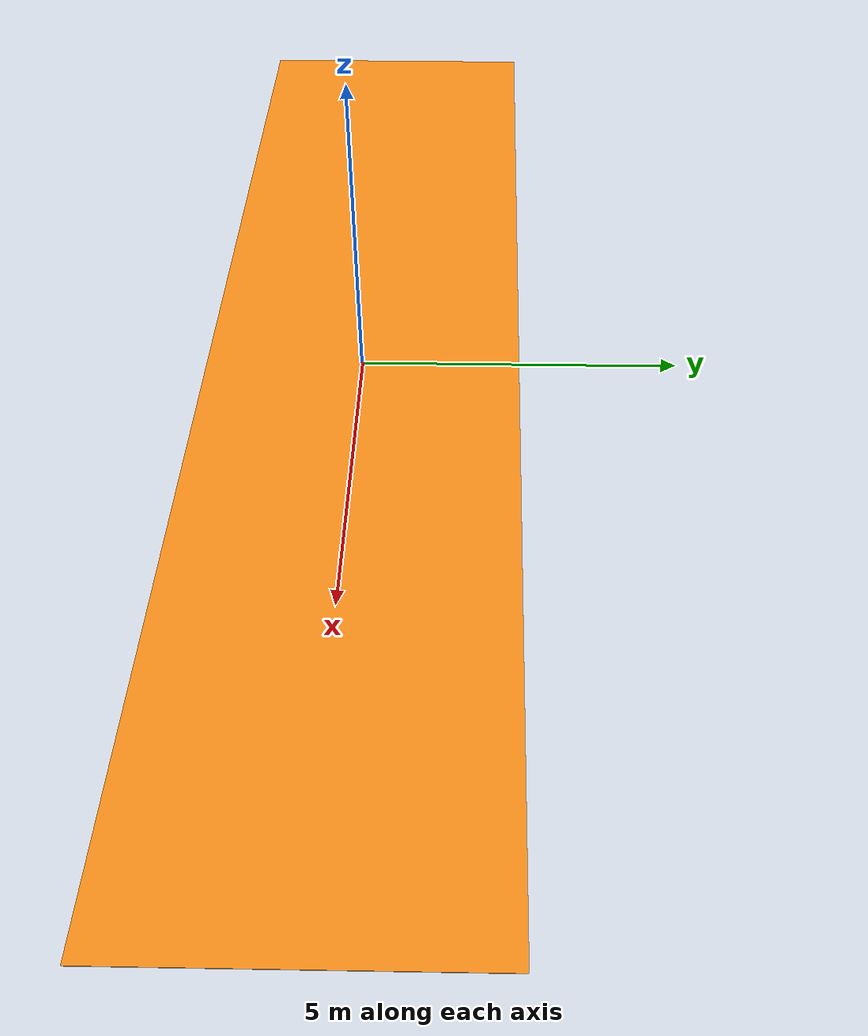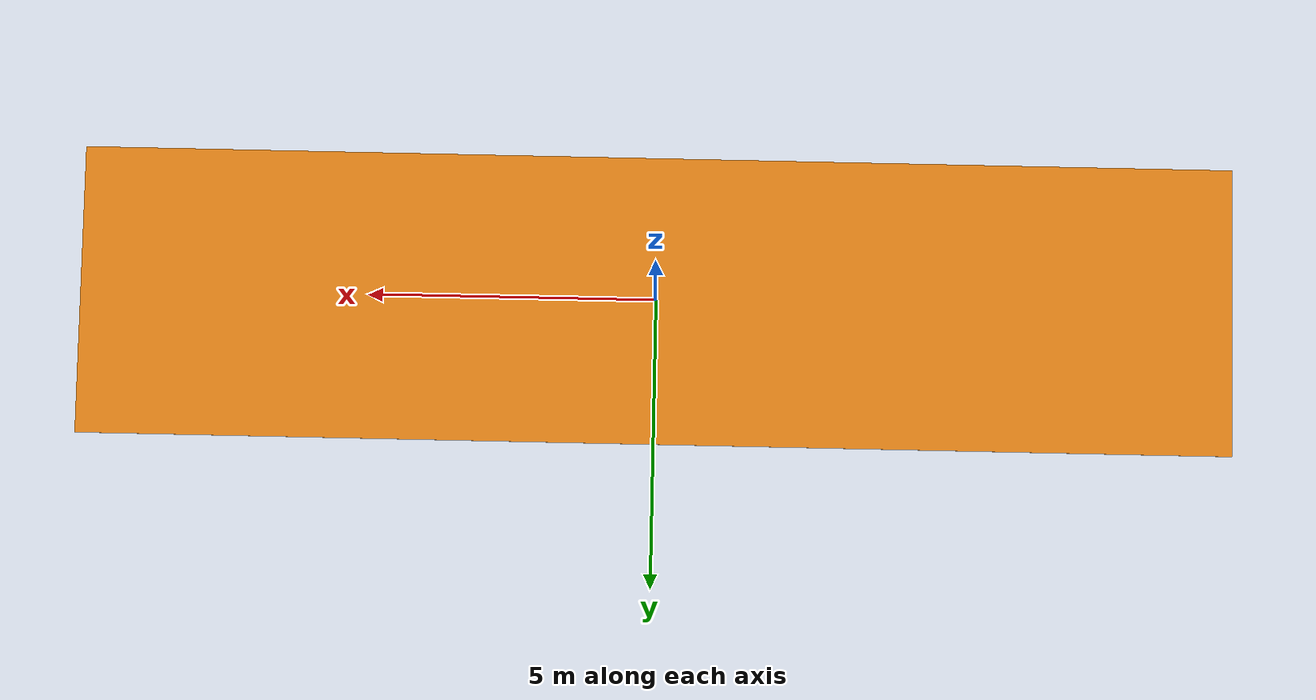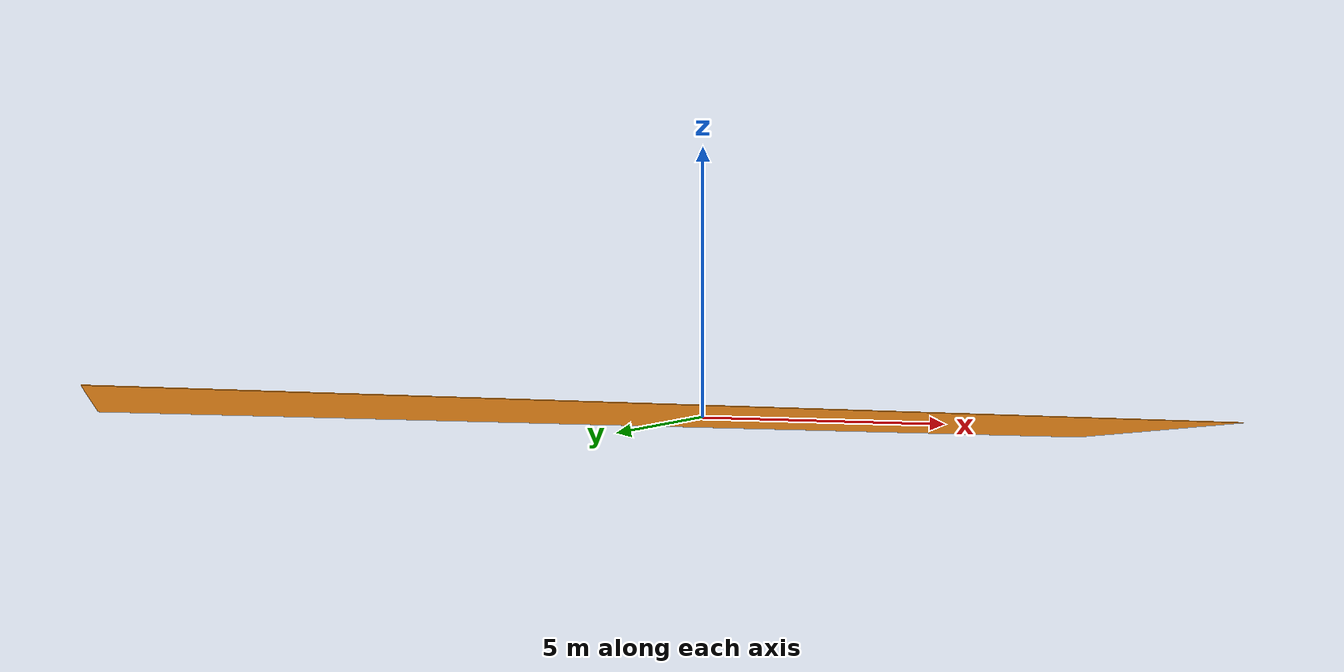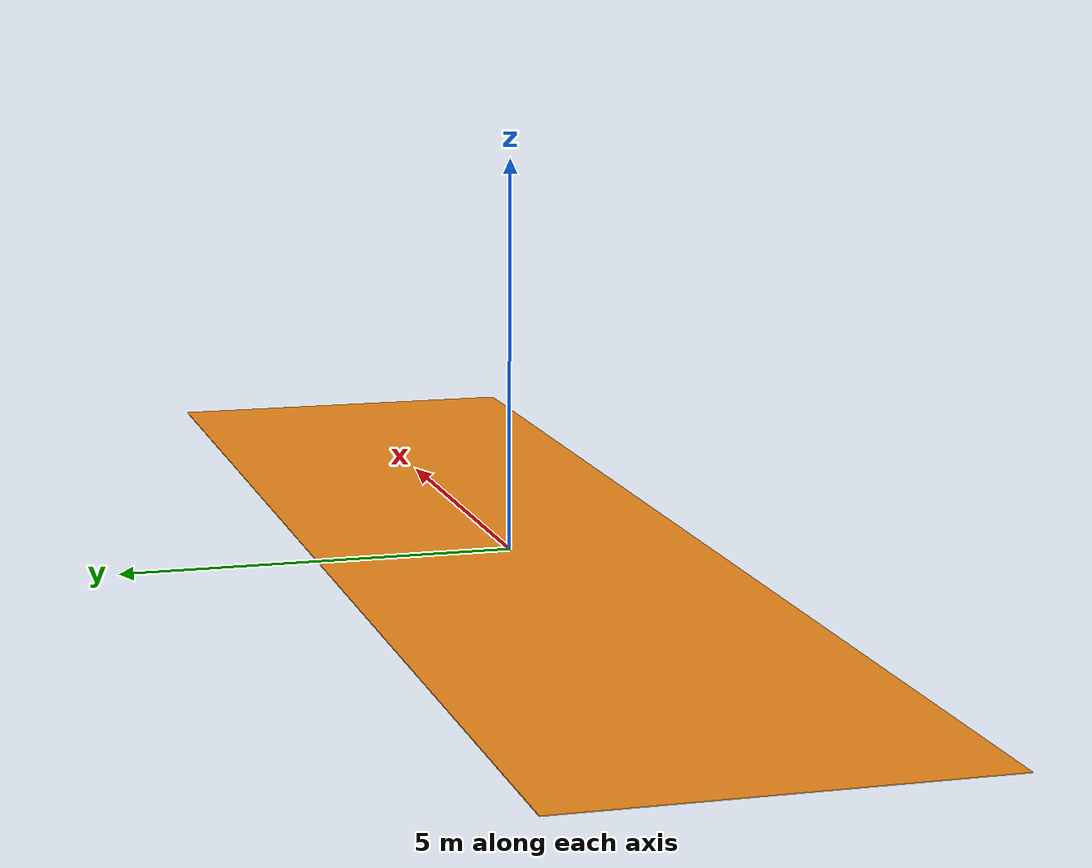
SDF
<?xml version="1.0" ?>
<sdf version="1.6">
  <model name="ground">
    <static>true</static>
    <link name='link'>
      <collision name="collision">
        <geometry>
          <box>
            <size>20 5 0.01</size>
          </box>
        </geometry>
        <surface>
          <contact>
            <collide_bitmask>0xffff</collide_bitmask>
          </contact>
          <friction>
            <ode>
              <mu>100</mu>
              <mu2>50</mu2>
            </ode>
          </friction>
        </surface>
      </collision>
      <visual name='visual'>
        <material>
          <script>
            <uri>file://media/materials/scripts/gazebo.material</uri>
            <name>Gazebo/Orange</name>
          </script>
        </material>
        <geometry>
          <box>
            <size>20 5 0.01</size>
          </box>
        </geometry>
      </visual>
    </link>
  </model>
</sdf>
